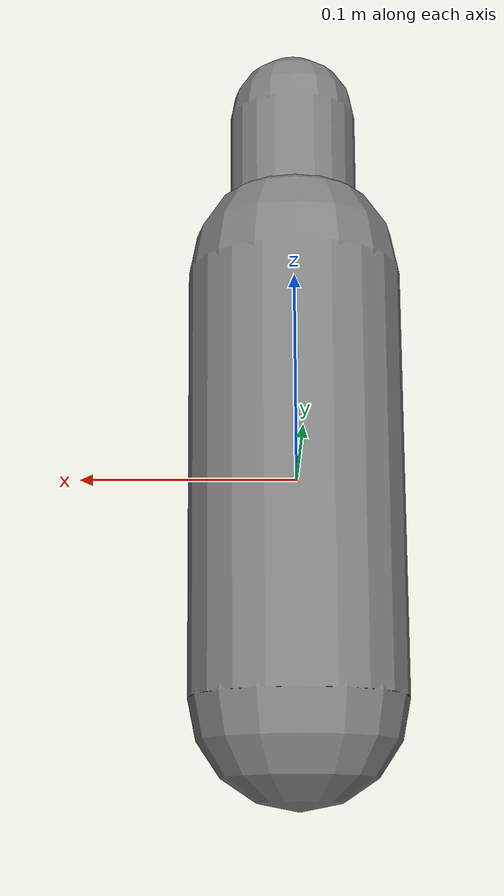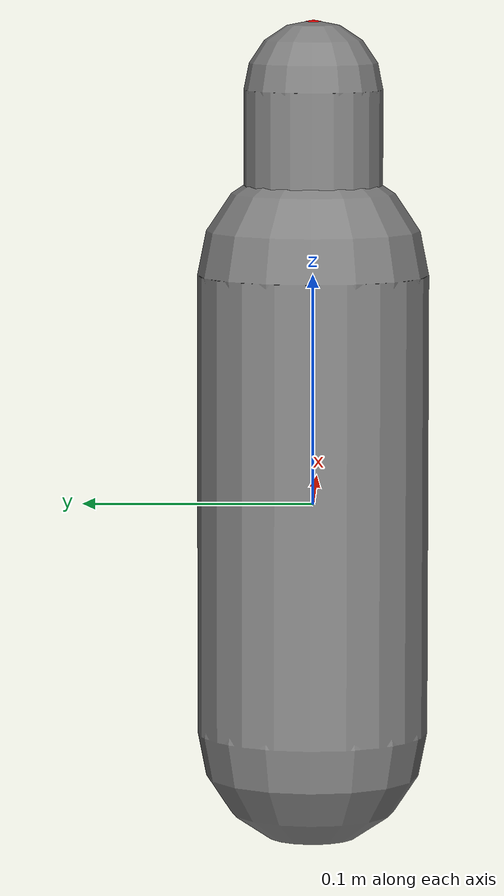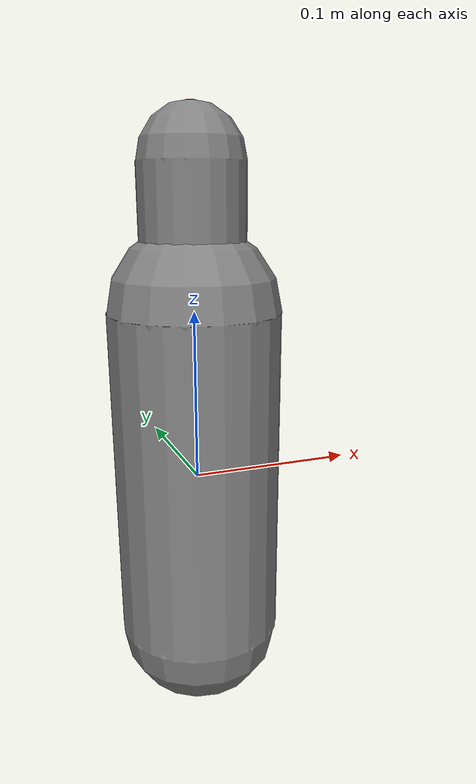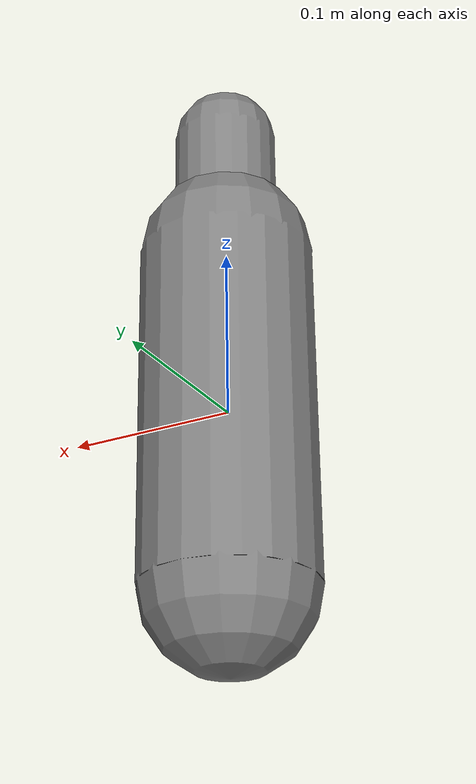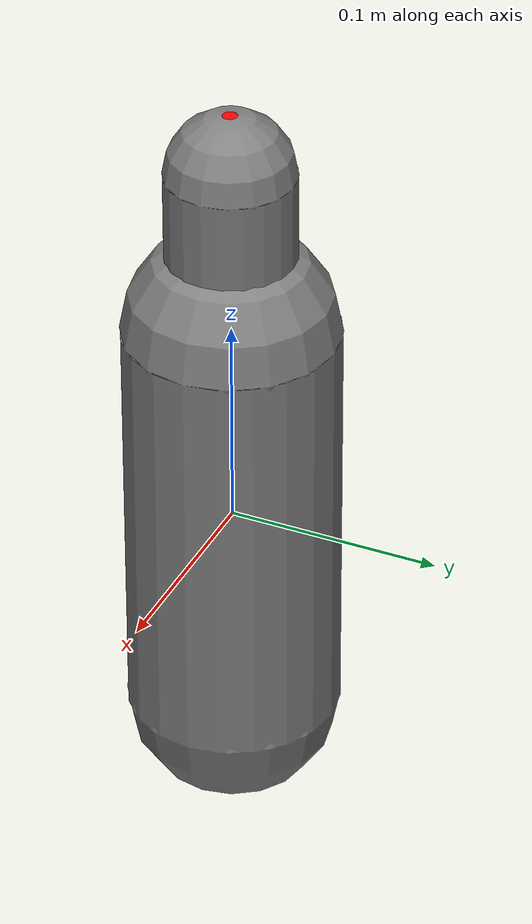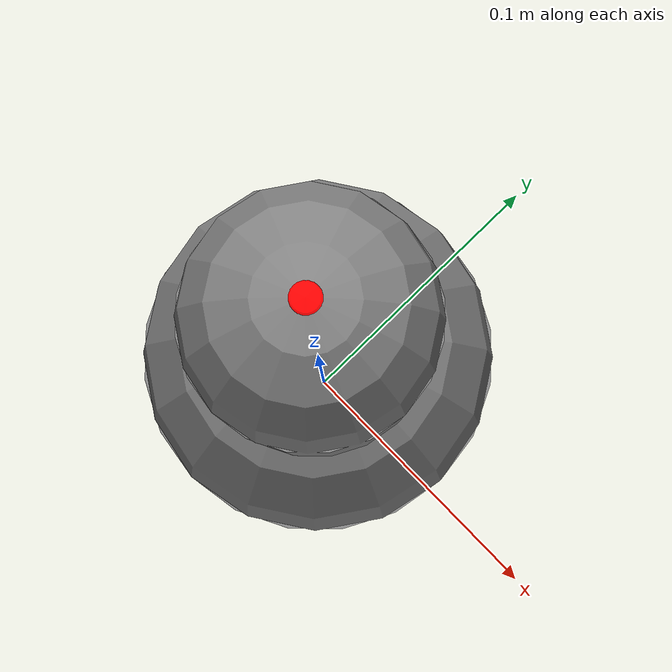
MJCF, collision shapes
<?xml version="1.0" ?>
<mujoco model="TEMPLATE_ROBOT_NAME">
  <compiler angle="radian" meshdir="assets" autolimits="true"/>

  <default>
    <default class="TEMPLATE_ROBOT_NAME">
      <joint frictionloss="0.1" armature="0.01"/>

      <!-- OPTION A: position control (fixed-base arm style).
           kp/kv per size class if different joints have different real
           torque limits; forcerange should match real hardware specs. -->
      <default class="size_large">
        <position kp="800" kv="160" ctrllimited="true" forcerange="-56 56"/>
      </default>
      <default class="size_small">
        <position kp="150" kv="30" ctrllimited="true" forcerange="-12 12"/>
      </default>

      <default class="motor_velocity">
        <velocity kv="0.05" ctrlrange="-10.0 10.0" ctrllimited="true" forcerange="-0.3 0.3"/>
      </default>

      <default class="visual">
        <geom type="mesh" contype="0" conaffinity="0" group="2"/>
      </default>
      <default class="collision">
        <geom group="3" friction="1.0 0.005 0.0001"/>
      </default>
    </default>
  </default>

  <worldbody>
    <body name="root_body" pos="0 0 0" quat="1 0 0 0" childclass="TEMPLATE_ROBOT_NAME">

      <inertial pos="0 0 0" mass="1.0" diaginertia="0.01 0.01 0.01"/>
      <geom type="mesh" class="visual" mesh="root_mesh"/>
      <geom class="collision" type="capsule" size="0.05 0.1"/>

      <body name="link_1" pos="0 0 0.1">
        <joint axis="0 0 1" name="joint_1" type="hinge" range="-3.14 3.14" class="size_large"/>
        <inertial pos="0 0 0" mass="0.5" diaginertia="0.005 0.005 0.005"/>
        <geom type="mesh" class="visual" mesh="link_1_mesh"/>
        <geom class="collision" type="capsule" size="0.03 0.08"/>

        <site name="tracked_point" pos="0 0 0.1" size="0.01" rgba="1 0 0 1"/>
      </body>
    </body>
  </worldbody>

  <asset>
    <mesh file="root_mesh.stl"/>
    <mesh file="link_1_mesh.stl"/>
    <!-- ... remaining meshes ... -->
  </asset>

  <actuator>
    <position class="size_large" name="joint_1" joint="joint_1" inheritrange="1"/>
  </actuator>

</mujoco>
